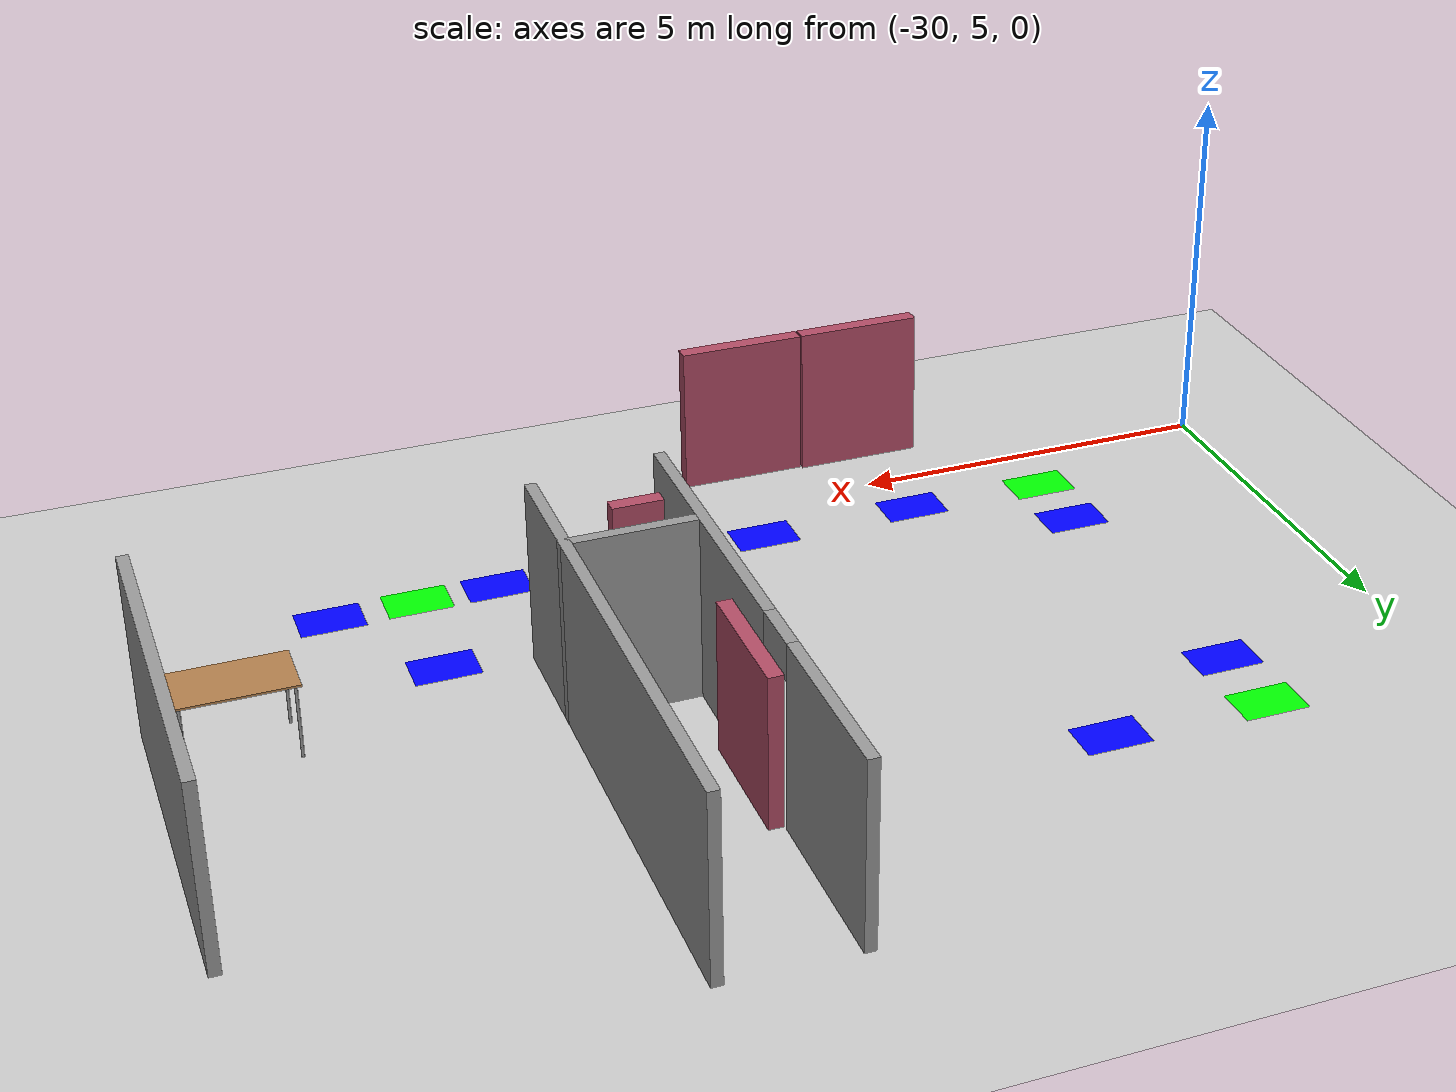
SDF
<sdf version="1.6">
 <world name="default">
  <model name="ground_plane">
   <pose>0 0 0.001 0 -0 0</pose>
   <static>1</static>
   <link name="link">
    <collision name="collision">
     <geometry><plane><normal>0 0 1</normal><size>100 100</size></plane></geometry>
     <surface><friction><ode><mu>100</mu><mu2>50</mu2></ode></friction></surface>
    </collision>
    <visual name="visual">
     <cast_shadows>0</cast_shadows>
     <geometry><plane><normal>0 0 1</normal><size>100 100</size></plane></geometry>
     <material>
      <script><uri>file://media/materials/scripts/gazebo.material</uri><name>Gazebo/Grey</name></script>
     </material>
    </visual>
   </link>
  </model>
  <model name="fin_se1f1.sdf">
   <pose>1.8125 -2.2901 0 0 -0 0</pose>
   <link name="Wall_118">
    <collision name="Wall_118_Collision">
     <geometry><box><size>1.75 0.15 2.5</size></box></geometry>
     <pose>0 0 1.25 0 -0 0</pose>
    </collision>
    <visual name="Wall_118_Visual">
     <pose>0 0 1.25 0 -0 0</pose>
     <geometry><box><size>1.75 0.15 2.5</size></box></geometry>
     <material>
      <script><uri>file://media/materials/scripts/gazebo.material</uri><name>Gazebo/Grey</name></script>
      <ambient>1 1 1 1</ambient>
     </material>
     <meta><layer>0</layer></meta>
    </visual>
    <pose>-22.0422 11.426 0 0 -0 3.14159</pose>
   </link>
   <link name="Wall_94">
    <collision name="Wall_94_Collision">
     <geometry><box><size>6.75 0.15 2.5</size></box></geometry>
     <pose>0 0 1.25 0 -0 0</pose>
    </collision>
    <visual name="Wall_94_Visual">
     <pose>0 0 1.25 0 -0 0</pose>
     <geometry><box><size>6.75 0.15 2.5</size></box></geometry>
     <material>
      <script><uri>file://media/materials/scripts/gazebo.material</uri><name>Gazebo/Grey</name></script>
      <ambient>1 1 1 1</ambient>
     </material>
     <meta><layer>0</layer></meta>
    </visual>
    <pose>-21.2422 13.3157 0 0 0 -1.5708</pose>
   </link>
   <link name="Wall_96">
    <pose>-22.9543 13.2442 0 0 0 -1.5708</pose>
    <visual name="Wall_96_Visual_0">
     <pose>-2.32948 0 1.25 0 -0 0</pose>
     <geometry><box><size>2.34105 0.15 2.5</size></box></geometry>
     <material>
      <script><uri>file://media/materials/scripts/gazebo.material</uri><name>Gazebo/Grey</name></script>
      <ambient>1 1 1 1</ambient>
     </material>
     <meta><layer>0</layer></meta>
    </visual>
    <collision name="Wall_96_Collision_0">
     <geometry><box><size>2.34105 0.15 2.5</size></box></geometry>
     <pose>-2.32948 0 1.25 0 -0 0</pose>
    </collision>
    <visual name="Wall_96_Visual_1">
     <pose>1.53001 0 1.25 0 -0 0</pose>
     <geometry><box><size>3.93998 0.15 2.5</size></box></geometry>
     <material>
      <script><uri>file://media/materials/scripts/gazebo.material</uri><name>Gazebo/Grey</name></script>
      <ambient>1 1 1 1</ambient>
     </material>
     <meta><layer>0</layer></meta>
    </visual>
    <collision name="Wall_96_Collision_1">
     <geometry><box><size>3.93998 0.15 2.5</size></box></geometry>
     <pose>1.53001 0 1.25 0 -0 0</pose>
    </collision>
    <visual name="Wall_96_Visual_2">
     <pose>-0.799464 0 2.25 0 -0 0</pose>
     <geometry><box><size>0.718978 0.15 0.5</size></box></geometry>
     <material>
      <script><uri>file://media/materials/scripts/gazebo.material</uri><name>Gazebo/Grey</name></script>
      <ambient>1 1 1 1</ambient>
     </material>
     <meta><layer>0</layer></meta>
    </visual>
    <collision name="Wall_96_Collision_2">
     <geometry><box><size>0.718978 0.15 0.5</size></box></geometry>
     <pose>-0.799464 0 2.25 0 -0 0</pose>
    </collision>
   </link>
   <link name="Wall_98">
    <collision name="Wall_98_Collision">
     <geometry><box><size>4.75 0.15 2.5</size></box></geometry>
     <pose>0 0 1.25 0 -0 0</pose>
    </collision>
    <visual name="Wall_98_Visual">
     <pose>0 0 1.25 0 -0 0</pose>
     <geometry><box><size>4.75 0.15 2.5</size></box></geometry>
     <material>
      <script><uri>file://media/materials/scripts/gazebo.material</uri><name>Gazebo/Grey</name></script>
      <ambient>1 1 1 1</ambient>
     </material>
     <meta><layer>0</layer></meta>
    </visual>
    <pose>-16.3735 12.2826 0 0 0 -1.5708</pose>
   </link>
   <static>1</static>
  </model>
  <model name="table_2">
   <static>1</static>
   <link name="link">
    <collision name="surface">
     <pose>0 0 1 0 -0 0</pose>
     <geometry><box><size>1.5 0.8 0.03</size></box></geometry>
     <surface><friction><ode><mu>0.6</mu><mu2>0.6</mu2></ode></friction></surface>
    </collision>
    <visual name="visual1">
     <pose>0 0 1 0 -0 0</pose>
     <geometry><box><size>1.5 0.8 0.03</size></box></geometry>
     <material>
      <script><uri>file://media/materials/scripts/gazebo.material</uri><name>Gazebo/Wood</name></script>
     </material>
    </visual>
    <collision name="front_left_leg">
     <pose>0.68 0.38 0.5 0 -0 0</pose>
     <geometry><cylinder><radius>0.02</radius><length>1</length></cylinder></geometry>
    </collision>
    <visual name="front_left_leg">
     <pose>0.68 0.38 0.5 0 -0 0</pose>
     <geometry><cylinder><radius>0.02</radius><length>1</length></cylinder></geometry>
     <material>
      <script><uri>file://media/materials/scripts/gazebo.material</uri><name>Gazebo/Grey</name></script>
     </material>
    </visual>
    <collision name="front_right_leg">
     <pose>0.68 -0.38 0.5 0 -0 0</pose>
     <geometry><cylinder><radius>0.02</radius><length>1</length></cylinder></geometry>
    </collision>
    <visual name="front_right_leg">
     <pose>0.68 -0.38 0.5 0 -0 0</pose>
     <geometry><cylinder><radius>0.02</radius><length>1</length></cylinder></geometry>
     <material>
      <script><uri>file://media/materials/scripts/gazebo.material</uri><name>Gazebo/Grey</name></script>
     </material>
    </visual>
    <collision name="back_right_leg">
     <pose>-0.68 -0.38 0.5 0 -0 0</pose>
     <geometry><cylinder><radius>0.02</radius><length>1</length></cylinder></geometry>
    </collision>
    <visual name="back_right_leg">
     <pose>-0.68 -0.38 0.5 0 -0 0</pose>
     <geometry><cylinder><radius>0.02</radius><length>1</length></cylinder></geometry>
     <material>
      <script><uri>file://media/materials/scripts/gazebo.material</uri><name>Gazebo/Grey</name></script>
     </material>
    </visual>
    <collision name="back_left_leg">
     <pose>-0.68 0.38 0.5 0 -0 0</pose>
     <geometry><cylinder><radius>0.02</radius><length>1</length></cylinder></geometry>
    </collision>
    <visual name="back_left_leg">
     <pose>-0.68 0.38 0.5 0 -0 0</pose>
     <geometry><cylinder><radius>0.02</radius><length>1</length></cylinder></geometry>
     <material>
      <script><uri>file://media/materials/scripts/gazebo.material</uri><name>Gazebo/Grey</name></script>
     </material>
    </visual>
   </link>
   <pose>-15.5399 8.3596 0.001 0 -0 0</pose>
  </model>
  <model name="doorOutside_clone_8_clone_7_clone_2">
   <link name="link">
    <pose>0.155539 -0.366282 0.216958 0 -0 0</pose>
    <inertial>
     <mass>2.13199</mass>
     <inertia>
      <ixx>0.452656</ixx>
      <ixy>0</ixy>
      <ixz>0</ixz>
      <iyy>0.796738</iyy>
      <iyz>0</iyz>
      <izz>0.699414</izz>
     </inertia>
     <pose>0 0 0.001 0 -0 0</pose>
    </inertial>
    <visual name="visual">
     <geometry><box><size>1.71368 0.198843 2.05986</size></box></geometry>
     <material>
      <script><name>Gazebo/Grey</name><uri>file://media/materials/scripts/gazebo.material</uri></script>
      <ambient>0.7 0.3 0.4 1</ambient>
      <diffuse>0.7 0.7 0.7 1</diffuse>
      <specular>0.01 0.01 0.01 1</specular>
      <emissive>0 0 0 1</emissive>
      <shader type="vertex"><normal_map>__default__</normal_map></shader>
      <lighting>0</lighting>
     </material>
     <pose>0 0 0.001 0 -0 0</pose>
    </visual>
    <collision name="collision">
     <pose>0 0 0.001 0 -0 0</pose>
     <geometry><box><size>1.71368 0.198843 2.05986</size></box></geometry>
     <surface>
      <friction>
       <ode><mu>1</mu><mu2>1</mu2><fdir1>0 0 0</fdir1><slip1>0</slip1><slip2>0</slip2></ode>
       <torsional>
        <coefficient>1</coefficient>
        <patch_radius>0</patch_radius>
        <surface_radius>0</surface_radius>
        <use_patch_radius>1</use_patch_radius>
        <ode><slip>0</slip></ode>
       </torsional>
      </friction>
      <bounce><restitution_coefficient>0</restitution_coefficient><threshold>1e+06</threshold></bounce>
      <contact>
       <collide_without_contact>0</collide_without_contact>
       <collide_without_contact_bitmask>1</collide_without_contact_bitmask>
       <collide_bitmask>1</collide_bitmask>
       <ode>
        <soft_cfm>0</soft_cfm>
        <soft_erp>0.2</soft_erp>
        <kp>1e+13</kp>
        <kd>1</kd>
        <max_vel>0.01</max_vel>
        <min_depth>0</min_depth>
       </ode>
       <bullet>
        <split_impulse>1</split_impulse>
        <split_impulse_penetration_threshold>-0.01</split_impulse_penetration_threshold>
        <soft_cfm>0</soft_cfm>
        <soft_erp>0.2</soft_erp>
        <kp>1e+13</kp>
        <kd>1</kd>
       </bullet>
      </contact>
     </surface>
    </collision>
   </link>
   <static>1</static>
   <pose>-23.5819 4.42818 0.814859 0.004083 -5e-06 -0.004333</pose>
  </model>
  <model name="doorOutside_clone_8_clone_7_clone_3">
   <link name="link">
    <pose>0.155539 -0.366282 0.216958 0 -0 0</pose>
    <inertial>
     <mass>2.13199</mass>
     <inertia>
      <ixx>0.452656</ixx>
      <ixy>0</ixy>
      <ixz>0</ixz>
      <iyy>0.796738</iyy>
      <iyz>0</iyz>
      <izz>0.699414</izz>
     </inertia>
     <pose>0 0 0.001 0 -0 0</pose>
    </inertial>
    <visual name="visual">
     <geometry><box><size>1.71368 0.198843 2.05986</size></box></geometry>
     <material>
      <script><name>Gazebo/Grey</name><uri>file://media/materials/scripts/gazebo.material</uri></script>
      <ambient>0.7 0.3 0.4 1</ambient>
      <diffuse>0.7 0.7 0.7 1</diffuse>
      <specular>0.01 0.01 0.01 1</specular>
      <emissive>0 0 0 1</emissive>
      <shader type="vertex"><normal_map>__default__</normal_map></shader>
      <lighting>0</lighting>
     </material>
     <pose>0 0 0.001 0 -0 0</pose>
    </visual>
    <collision name="collision">
     <pose>0 0 0.001 0 -0 0</pose>
     <geometry><box><size>1.71368 0.198843 2.05986</size></box></geometry>
     <surface>
      <friction>
       <ode><mu>1</mu><mu2>1</mu2><fdir1>0 0 0</fdir1><slip1>0</slip1><slip2>0</slip2></ode>
       <torsional>
        <coefficient>1</coefficient>
        <patch_radius>0</patch_radius>
        <surface_radius>0</surface_radius>
        <use_patch_radius>1</use_patch_radius>
        <ode><slip>0</slip></ode>
       </torsional>
      </friction>
      <bounce><restitution_coefficient>0</restitution_coefficient><threshold>1e+06</threshold></bounce>
      <contact>
       <collide_without_contact>0</collide_without_contact>
       <collide_without_contact_bitmask>1</collide_without_contact_bitmask>
       <collide_bitmask>1</collide_bitmask>
       <ode>
        <soft_cfm>0</soft_cfm>
        <soft_erp>0.2</soft_erp>
        <kp>1e+13</kp>
        <kd>1</kd>
        <max_vel>0.01</max_vel>
        <min_depth>0</min_depth>
       </ode>
       <bullet>
        <split_impulse>1</split_impulse>
        <split_impulse_penetration_threshold>-0.01</split_impulse_penetration_threshold>
        <soft_cfm>0</soft_cfm>
        <soft_erp>0.2</soft_erp>
        <kp>1e+13</kp>
        <kd>1</kd>
       </bullet>
      </contact>
     </surface>
    </collision>
   </link>
   <static>1</static>
   <pose>-25.3182 4.45907 0.825573 0.027736 -0 0</pose>
  </model>
  <model name="intersection_0">
   <link name="link">
    <pose>0 0 0.001 0 -0 0</pose>
    <inertial>
     <mass>0.0352517</mass>
     <inertia>
      <ixx>0.000997067</ixx>
      <ixy>0</ixy>
      <ixz>0</ixz>
      <iyy>0.00220147</iyy>
      <iyz>0</iyz>
      <izz>0.0031692</izz>
     </inertia>
     <pose>0 0 0.001 0 -0 0</pose>
    </inertial>
    <visual name="visual">
     <geometry><box><size>0.862743 0.578289 1e-06</size></box></geometry>
     <material>
      <script><name>Gazebo/Grey</name><uri>file://media/materials/scripts/gazebo.material</uri></script>
      <ambient>0 0 1 1</ambient>
      <diffuse>0 0 1 1</diffuse>
      <specular>0 0 1 1</specular>
      <emissive>0 0 1 1</emissive>
      <shader type="vertex"><normal_map>__default__</normal_map></shader>
     </material>
     <pose>0 0 0.001 0 -0 0</pose>
    </visual>
    <collision name="collision">
     <pose>0 0 0.001 0 -0 0</pose>
     <geometry><box><size>0.862743 0.578289 0.000477</size></box></geometry>
     <surface>
      <friction>
       <ode><mu>1</mu><mu2>1</mu2><fdir1>0 0 0</fdir1><slip1>0</slip1><slip2>0</slip2></ode>
       <torsional>
        <coefficient>1</coefficient>
        <patch_radius>0</patch_radius>
        <surface_radius>0</surface_radius>
        <use_patch_radius>1</use_patch_radius>
        <ode><slip>0</slip></ode>
       </torsional>
      </friction>
      <bounce><restitution_coefficient>0</restitution_coefficient><threshold>1e+06</threshold></bounce>
      <contact>
       <collide_without_contact>0</collide_without_contact>
       <collide_without_contact_bitmask>1</collide_without_contact_bitmask>
       <collide_bitmask>1</collide_bitmask>
       <ode>
        <soft_cfm>0</soft_cfm>
        <soft_erp>0.2</soft_erp>
        <kp>1e+13</kp>
        <kd>1</kd>
        <max_vel>0.01</max_vel>
        <min_depth>0</min_depth>
       </ode>
       <bullet>
        <split_impulse>1</split_impulse>
        <split_impulse_penetration_threshold>-0.01</split_impulse_penetration_threshold>
        <soft_cfm>0</soft_cfm>
        <soft_erp>0.2</soft_erp>
        <kp>1e+13</kp>
        <kd>1</kd>
       </bullet>
      </contact>
     </surface>
    </collision>
   </link>
   <static>1</static>
   <pose>-25.3659 11.7621 0 0 -0 0</pose>
  </model>
  <model name="intersection_1">
   <link name="link">
    <pose>0 0 0.001 0 -0 0</pose>
    <inertial>
     <mass>0.0352517</mass>
     <inertia>
      <ixx>0.000997067</ixx>
      <ixy>0</ixy>
      <ixz>0</ixz>
      <iyy>0.00220147</iyy>
      <iyz>0</iyz>
      <izz>0.0031692</izz>
     </inertia>
     <pose>0 0 0.001 0 -0 0</pose>
    </inertial>
    <visual name="visual">
     <geometry><box><size>0.862743 0.578289 1e-06</size></box></geometry>
     <material>
      <script><name>Gazebo/Grey</name><uri>file://media/materials/scripts/gazebo.material</uri></script>
      <ambient>0 0 1 1</ambient>
      <diffuse>0 0 1 1</diffuse>
      <specular>0 0 1 1</specular>
      <emissive>0 0 1 1</emissive>
      <shader type="vertex"><normal_map>__default__</normal_map></shader>
     </material>
     <pose>0 0 0.001 0 -0 0</pose>
    </visual>
    <collision name="collision">
     <pose>0 0 0.001 0 -0 0</pose>
     <geometry><box><size>0.862743 0.578289 0.000477</size></box></geometry>
     <surface>
      <friction>
       <ode><mu>1</mu><mu2>1</mu2><fdir1>0 0 0</fdir1><slip1>0</slip1><slip2>0</slip2></ode>
       <torsional>
        <coefficient>1</coefficient>
        <patch_radius>0</patch_radius>
        <surface_radius>0</surface_radius>
        <use_patch_radius>1</use_patch_radius>
        <ode><slip>0</slip></ode>
       </torsional>
      </friction>
      <bounce><restitution_coefficient>0</restitution_coefficient><threshold>1e+06</threshold></bounce>
      <contact>
       <collide_without_contact>0</collide_without_contact>
       <collide_without_contact_bitmask>1</collide_without_contact_bitmask>
       <collide_bitmask>1</collide_bitmask>
       <ode>
        <soft_cfm>0</soft_cfm>
        <soft_erp>0.2</soft_erp>
        <kp>1e+13</kp>
        <kd>1</kd>
        <max_vel>0.01</max_vel>
        <min_depth>0</min_depth>
       </ode>
       <bullet>
        <split_impulse>1</split_impulse>
        <split_impulse_penetration_threshold>-0.01</split_impulse_penetration_threshold>
        <soft_cfm>0</soft_cfm>
        <soft_erp>0.2</soft_erp>
        <kp>1e+13</kp>
        <kd>1</kd>
       </bullet>
      </contact>
     </surface>
    </collision>
   </link>
   <static>1</static>
   <pose>-21.9217 7.70918 0 0 -0 0</pose>
  </model>
  <model name="intersection_2">
   <link name="link">
    <pose>0 0 0.001 0 -0 0</pose>
    <inertial>
     <mass>0.0352517</mass>
     <inertia>
      <ixx>0.000997067</ixx>
      <ixy>0</ixy>
      <ixz>0</ixz>
      <iyy>0.00220147</iyy>
      <iyz>0</iyz>
      <izz>0.0031692</izz>
     </inertia>
     <pose>0 0 0.001 0 -0 0</pose>
    </inertial>
    <visual name="visual">
     <geometry><box><size>0.862743 0.578289 1e-06</size></box></geometry>
     <material>
      <script><name>Gazebo/Grey</name><uri>file://media/materials/scripts/gazebo.material</uri></script>
      <ambient>0 0 1 1</ambient>
      <diffuse>0 0 1 1</diffuse>
      <specular>0 0 1 1</specular>
      <emissive>0 0 1 1</emissive>
      <shader type="vertex"><normal_map>__default__</normal_map></shader>
     </material>
     <pose>0 0 0.001 0 -0 0</pose>
    </visual>
    <collision name="collision">
     <pose>0 0 0.001 0 -0 0</pose>
     <geometry><box><size>0.862743 0.578289 0.000477</size></box></geometry>
     <surface>
      <friction>
       <ode><mu>1</mu><mu2>1</mu2><fdir1>0 0 0</fdir1><slip1>0</slip1><slip2>0</slip2></ode>
       <torsional>
        <coefficient>1</coefficient>
        <patch_radius>0</patch_radius>
        <surface_radius>0</surface_radius>
        <use_patch_radius>1</use_patch_radius>
        <ode><slip>0</slip></ode>
       </torsional>
      </friction>
      <bounce><restitution_coefficient>0</restitution_coefficient><threshold>1e+06</threshold></bounce>
      <contact>
       <collide_without_contact>0</collide_without_contact>
       <collide_without_contact_bitmask>1</collide_without_contact_bitmask>
       <collide_bitmask>1</collide_bitmask>
       <ode>
        <soft_cfm>0</soft_cfm>
        <soft_erp>0.2</soft_erp>
        <kp>1e+13</kp>
        <kd>1</kd>
        <max_vel>0.01</max_vel>
        <min_depth>0</min_depth>
       </ode>
       <bullet>
        <split_impulse>1</split_impulse>
        <split_impulse_penetration_threshold>-0.01</split_impulse_penetration_threshold>
        <soft_cfm>0</soft_cfm>
        <soft_erp>0.2</soft_erp>
        <kp>1e+13</kp>
        <kd>1</kd>
       </bullet>
      </contact>
     </surface>
    </collision>
   </link>
   <static>1</static>
   <pose>-25.3153 5.80735 0 0 -0 0</pose>
  </model>
  <model name="intersection_10">
   <link name="link">
    <pose>0 0 0.001 0 -0 0</pose>
    <inertial>
     <mass>0.0352517</mass>
     <inertia>
      <ixx>0.000997067</ixx>
      <ixy>0</ixy>
      <ixz>0</ixz>
      <iyy>0.00220147</iyy>
      <iyz>0</iyz>
      <izz>0.0031692</izz>
     </inertia>
     <pose>0 0 0.001 0 -0 0</pose>
    </inertial>
    <visual name="visual">
     <geometry><box><size>0.862743 0.578289 1e-06</size></box></geometry>
     <material>
      <script><name>Gazebo/Grey</name><uri>file://media/materials/scripts/gazebo.material</uri></script>
      <ambient>0 0 1 1</ambient>
      <diffuse>0 0 1 1</diffuse>
      <specular>0 0 1 1</specular>
      <emissive>0 0 1 1</emissive>
      <shader type="vertex"><normal_map>__default__</normal_map></shader>
     </material>
     <pose>0 0 0.001 0 -0 0</pose>
    </visual>
    <collision name="collision">
     <pose>0 0 0.001 0 -0 0</pose>
     <geometry><box><size>0.862743 0.578289 0.000477</size></box></geometry>
     <surface>
      <friction>
       <ode><mu>1</mu><mu2>1</mu2><fdir1>0 0 0</fdir1><slip1>0</slip1><slip2>0</slip2></ode>
       <torsional>
        <coefficient>1</coefficient>
        <patch_radius>0</patch_radius>
        <surface_radius>0</surface_radius>
        <use_patch_radius>1</use_patch_radius>
        <ode><slip>0</slip></ode>
       </torsional>
      </friction>
      <bounce><restitution_coefficient>0</restitution_coefficient><threshold>1e+06</threshold></bounce>
      <contact>
       <collide_without_contact>0</collide_without_contact>
       <collide_without_contact_bitmask>1</collide_without_contact_bitmask>
       <collide_bitmask>1</collide_bitmask>
       <ode>
        <soft_cfm>0</soft_cfm>
        <soft_erp>0.2</soft_erp>
        <kp>1e+13</kp>
        <kd>1</kd>
        <max_vel>0.01</max_vel>
        <min_depth>0</min_depth>
       </ode>
       <bullet>
        <split_impulse>1</split_impulse>
        <split_impulse_penetration_threshold>-0.01</split_impulse_penetration_threshold>
        <soft_cfm>0</soft_cfm>
        <soft_erp>0.2</soft_erp>
        <kp>1e+13</kp>
        <kd>1</kd>
       </bullet>
      </contact>
     </surface>
    </collision>
   </link>
   <static>1</static>
   <pose>-18.2493 7.4564 0 0 -0 0</pose>
  </model>
  <model name="doorOutside_2_clone_0">
   <link name="link">
    <pose>0.155539 -0.366282 0.216958 0 -0 0</pose>
    <inertial>
     <mass>2.13199</mass>
     <inertia>
      <ixx>0.452656</ixx>
      <ixy>0</ixy>
      <ixz>0</ixz>
      <iyy>0.796738</iyy>
      <iyz>0</iyz>
      <izz>0.699414</izz>
     </inertia>
     <pose>0 0 0.001 0 -0 0</pose>
    </inertial>
    <visual name="visual">
     <geometry><box><size>1.71368 0.198843 2.05986</size></box></geometry>
     <material>
      <script><name>Gazebo/Grey</name><uri>file://media/materials/scripts/gazebo.material</uri></script>
      <ambient>0.7 0.3 0.4 1</ambient>
      <diffuse>0.7 0.7 0.7 1</diffuse>
      <specular>0.01 0.01 0.01 1</specular>
      <emissive>0 0 0 1</emissive>
      <shader type="vertex"><normal_map>__default__</normal_map></shader>
      <lighting>0</lighting>
     </material>
     <pose>0 0 0.001 0 -0 0</pose>
    </visual>
    <collision name="collision">
     <pose>0 0 0.001 0 -0 0</pose>
     <geometry><box><size>1.71368 0.198843 2.05986</size></box></geometry>
     <surface>
      <friction>
       <ode><mu>1</mu><mu2>1</mu2><fdir1>0 0 0</fdir1><slip1>0</slip1><slip2>0</slip2></ode>
       <torsional>
        <coefficient>1</coefficient>
        <patch_radius>0</patch_radius>
        <surface_radius>0</surface_radius>
        <use_patch_radius>1</use_patch_radius>
        <ode><slip>0</slip></ode>
       </torsional>
      </friction>
      <bounce><restitution_coefficient>0</restitution_coefficient><threshold>1e+06</threshold></bounce>
      <contact>
       <collide_without_contact>0</collide_without_contact>
       <collide_without_contact_bitmask>1</collide_without_contact_bitmask>
       <collide_bitmask>1</collide_bitmask>
       <ode>
        <soft_cfm>0</soft_cfm>
        <soft_erp>0.2</soft_erp>
        <kp>1e+13</kp>
        <kd>1</kd>
        <max_vel>0.01</max_vel>
        <min_depth>0</min_depth>
       </ode>
       <bullet>
        <split_impulse>1</split_impulse>
        <split_impulse_penetration_threshold>-0.01</split_impulse_penetration_threshold>
        <soft_cfm>0</soft_cfm>
        <soft_erp>0.2</soft_erp>
        <kp>1e+13</kp>
        <kd>1</kd>
       </bullet>
      </contact>
     </surface>
    </collision>
   </link>
   <static>0</static>
   <pose>-21.3336 11.0502 0.811972 0 -0 1.57082</pose>
  </model>
  <model name="doorInside">
   <link name="link">
    <pose>0.712274 -0.220649 0.216958 0 -0 0</pose>
    <inertial>
     <mass>0.840612</mass>
     <inertia>
      <ixx>0.178476</ixx>
      <ixy>0</ixy>
      <ixz>0</ixz>
      <iyy>0.140406</iyy>
      <iyz>0</iyz>
      <izz>0.102032</izz>
     </inertia>
     <pose>0 0 0.001 0 -0 0</pose>
    </inertial>
    <visual name="visual">
     <geometry><box><size>0.675678 0.198843 2.05986</size></box></geometry>
     <material>
      <script><name>Gazebo/Grey</name><uri>file://media/materials/scripts/gazebo.material</uri></script>
      <ambient>0.7 0.3 0.4 1</ambient>
      <diffuse>0.7 0.7 0.7 1</diffuse>
      <specular>0.01 0.01 0.01 1</specular>
      <emissive>1 0 0 1</emissive>
      <shader type="vertex"><normal_map>__default__</normal_map></shader>
      <lighting>0</lighting>
     </material>
     <pose>0 0 0.001 0 -0 0</pose>
    </visual>
    <collision name="collision">
     <pose>0 0 0.001 0 -0 0</pose>
     <geometry><box><size>0.675678 0.198843 2.05986</size></box></geometry>
     <surface>
      <friction>
       <ode><mu>1</mu><mu2>1</mu2><fdir1>0 0 0</fdir1><slip1>0</slip1><slip2>0</slip2></ode>
       <torsional>
        <coefficient>1</coefficient>
        <patch_radius>0</patch_radius>
        <surface_radius>0</surface_radius>
        <use_patch_radius>1</use_patch_radius>
        <ode><slip>0</slip></ode>
       </torsional>
      </friction>
      <bounce><restitution_coefficient>0</restitution_coefficient><threshold>1e+06</threshold></bounce>
      <contact>
       <collide_without_contact>0</collide_without_contact>
       <collide_without_contact_bitmask>1</collide_without_contact_bitmask>
       <collide_bitmask>1</collide_bitmask>
       <ode>
        <soft_cfm>0</soft_cfm>
        <soft_erp>0.2</soft_erp>
        <kp>1e+13</kp>
        <kd>1</kd>
        <max_vel>0.01</max_vel>
        <min_depth>0</min_depth>
       </ode>
       <bullet>
        <split_impulse>1</split_impulse>
        <split_impulse_penetration_threshold>-0.01</split_impulse_penetration_threshold>
        <soft_cfm>0</soft_cfm>
        <soft_erp>0.2</soft_erp>
        <kp>1e+13</kp>
        <kd>1</kd>
       </bullet>
      </contact>
     </surface>
    </collision>
   </link>
   <static>0</static>
   <pose>-21.4412 7.97959 0.811972 0 0 -1e-06</pose>
  </model>
  <model name="corridor_1">
   <link name="link">
    <pose>0 0 0.001 0 -0 0</pose>
    <inertial>
     <mass>0.0352517</mass>
     <inertia>
      <ixx>0.00099707</ixx>
      <ixy>0</ixy>
      <ixz>0</ixz>
      <iyy>0.00220147</iyy>
      <iyz>0</iyz>
      <izz>0.0031692</izz>
     </inertia>
     <pose>0 0 0.001 0 -0 0</pose>
    </inertial>
    <visual name="visual">
     <geometry><box><size>0.862743 0.578289 1e-06</size></box></geometry>
     <material>
      <script><name>Gazebo/Grey</name><uri>file://media/materials/scripts/gazebo.material</uri></script>
      <ambient>0 1 0 1</ambient>
      <diffuse>0 1 0 1</diffuse>
      <specular>0 1 0 1</specular>
      <emissive>0 1 0 1</emissive>
      <shader type="vertex"><normal_map>__default__</normal_map></shader>
     </material>
     <pose>0 0 0.001 0 -0 0</pose>
    </visual>
    <collision name="collision">
     <pose>0 0 0.001 0 -0 0</pose>
     <geometry><box><size>0.862743 0.578289 0.000477</size></box></geometry>
     <surface>
      <friction>
       <ode><mu>1</mu><mu2>1</mu2><fdir1>0 0 0</fdir1><slip1>0</slip1><slip2>0</slip2></ode>
       <torsional>
        <coefficient>1</coefficient>
        <patch_radius>0</patch_radius>
        <surface_radius>0</surface_radius>
        <use_patch_radius>1</use_patch_radius>
        <ode><slip>0</slip></ode>
       </torsional>
      </friction>
      <bounce><restitution_coefficient>0</restitution_coefficient><threshold>1e+06</threshold></bounce>
      <contact>
       <collide_without_contact>0</collide_without_contact>
       <collide_without_contact_bitmask>1</collide_without_contact_bitmask>
       <collide_bitmask>1</collide_bitmask>
       <ode>
        <soft_cfm>0</soft_cfm>
        <soft_erp>0.2</soft_erp>
        <kp>1e+13</kp>
        <kd>1</kd>
        <max_vel>0.01</max_vel>
        <min_depth>0</min_depth>
       </ode>
       <bullet>
        <split_impulse>1</split_impulse>
        <split_impulse_penetration_threshold>-0.01</split_impulse_penetration_threshold>
        <soft_cfm>0</soft_cfm>
        <soft_erp>0.2</soft_erp>
        <kp>1e+13</kp>
        <kd>1</kd>
       </bullet>
      </contact>
     </surface>
    </collision>
   </link>
   <static>1</static>
   <pose>-27.4848 11.7903 0 0 -0 0</pose>
  </model>
  <model name="corridor_2">
   <link name="link">
    <pose>0 0 0.001 0 -0 0</pose>
    <inertial>
     <mass>0.0352517</mass>
     <inertia>
      <ixx>0.00099707</ixx>
      <ixy>0</ixy>
      <ixz>0</ixz>
      <iyy>0.00220147</iyy>
      <iyz>0</iyz>
      <izz>0.0031692</izz>
     </inertia>
     <pose>0 0 0.001 0 -0 0</pose>
    </inertial>
    <visual name="visual">
     <geometry><box><size>0.862743 0.578289 1e-06</size></box></geometry>
     <material>
      <script><name>Gazebo/Grey</name><uri>file://media/materials/scripts/gazebo.material</uri></script>
      <ambient>0 1 0 1</ambient>
      <diffuse>0 1 0 1</diffuse>
      <specular>0 1 0 1</specular>
      <emissive>0 1 0 1</emissive>
      <shader type="vertex"><normal_map>__default__</normal_map></shader>
     </material>
     <pose>0 0 0.001 0 -0 0</pose>
    </visual>
    <collision name="collision">
     <pose>0 0 0.001 0 -0 0</pose>
     <geometry><box><size>0.862743 0.578289 0.000477</size></box></geometry>
     <surface>
      <friction>
       <ode><mu>1</mu><mu2>1</mu2><fdir1>0 0 0</fdir1><slip1>0</slip1><slip2>0</slip2></ode>
       <torsional>
        <coefficient>1</coefficient>
        <patch_radius>0</patch_radius>
        <surface_radius>0</surface_radius>
        <use_patch_radius>1</use_patch_radius>
        <ode><slip>0</slip></ode>
       </torsional>
      </friction>
      <bounce><restitution_coefficient>0</restitution_coefficient><threshold>1e+06</threshold></bounce>
      <contact>
       <collide_without_contact>0</collide_without_contact>
       <collide_without_contact_bitmask>1</collide_without_contact_bitmask>
       <collide_bitmask>1</collide_bitmask>
       <ode>
        <soft_cfm>0</soft_cfm>
        <soft_erp>0.2</soft_erp>
        <kp>1e+13</kp>
        <kd>1</kd>
        <max_vel>0.01</max_vel>
        <min_depth>0</min_depth>
       </ode>
       <bullet>
        <split_impulse>1</split_impulse>
        <split_impulse_penetration_threshold>-0.01</split_impulse_penetration_threshold>
        <soft_cfm>0</soft_cfm>
        <soft_erp>0.2</soft_erp>
        <kp>1e+13</kp>
        <kd>1</kd>
       </bullet>
      </contact>
     </surface>
    </collision>
   </link>
   <static>1</static>
   <pose>-27.2383 5.85562 0 0 -0 0</pose>
  </model>
  <model name="corridor_20">
   <link name="link">
    <pose>0 0 0.001 0 -0 0</pose>
    <inertial>
     <mass>0.0352517</mass>
     <inertia>
      <ixx>0.00099707</ixx>
      <ixy>0</ixy>
      <ixz>0</ixz>
      <iyy>0.00220147</iyy>
      <iyz>0</iyz>
      <izz>0.0031692</izz>
     </inertia>
     <pose>0 0 0.001 0 -0 0</pose>
    </inertial>
    <visual name="visual">
     <geometry><box><size>0.862743 0.578289 1e-06</size></box></geometry>
     <material>
      <script><name>Gazebo/Grey</name><uri>file://media/materials/scripts/gazebo.material</uri></script>
      <ambient>0 1 0 1</ambient>
      <diffuse>0 1 0 1</diffuse>
      <specular>0 1 0 1</specular>
      <emissive>0 1 0 1</emissive>
      <shader type="vertex"><normal_map>__default__</normal_map></shader>
     </material>
     <pose>0 0 0.001 0 -0 0</pose>
    </visual>
    <collision name="collision">
     <pose>0 0 0.001 0 -0 0</pose>
     <geometry><box><size>0.862743 0.578289 0.000477</size></box></geometry>
     <surface>
      <friction>
       <ode><mu>1</mu><mu2>1</mu2><fdir1>0 0 0</fdir1><slip1>0</slip1><slip2>0</slip2></ode>
       <torsional>
        <coefficient>1</coefficient>
        <patch_radius>0</patch_radius>
        <surface_radius>0</surface_radius>
        <use_patch_radius>1</use_patch_radius>
        <ode><slip>0</slip></ode>
       </torsional>
      </friction>
      <bounce><restitution_coefficient>0</restitution_coefficient><threshold>1e+06</threshold></bounce>
      <contact>
       <collide_without_contact>0</collide_without_contact>
       <collide_without_contact_bitmask>1</collide_without_contact_bitmask>
       <collide_bitmask>1</collide_bitmask>
       <ode>
        <soft_cfm>0</soft_cfm>
        <soft_erp>0.2</soft_erp>
        <kp>1e+13</kp>
        <kd>1</kd>
        <max_vel>0.01</max_vel>
        <min_depth>0</min_depth>
       </ode>
       <bullet>
        <split_impulse>1</split_impulse>
        <split_impulse_penetration_threshold>-0.01</split_impulse_penetration_threshold>
        <soft_cfm>0</soft_cfm>
        <soft_erp>0.2</soft_erp>
        <kp>1e+13</kp>
        <kd>1</kd>
       </bullet>
      </contact>
     </surface>
    </collision>
   </link>
   <static>1</static>
   <pose>-18.3036 5.80577 0 0 -0 0</pose>
  </model>
  <model name="corridor_21">
   <link name="link">
    <pose>0 0 0.001 0 -0 0</pose>
    <inertial>
     <mass>0.0352517</mass>
     <inertia>
      <ixx>0.00099707</ixx>
      <ixy>0</ixy>
      <ixz>0</ixz>
      <iyy>0.00220147</iyy>
      <iyz>0</iyz>
      <izz>0.0031692</izz>
     </inertia>
     <pose>0 0 0.001 0 -0 0</pose>
    </inertial>
    <visual name="visual">
     <geometry><box><size>0.862743 0.578289 1e-06</size></box></geometry>
     <material>
      <script><name>Gazebo/Grey</name><uri>file://media/materials/scripts/gazebo.material</uri></script>
      <ambient>0 1 0 1</ambient>
      <diffuse>0 1 0 1</diffuse>
      <specular>0 1 0 1</specular>
      <emissive>0 1 0 1</emissive>
      <shader type="vertex"><normal_map>__default__</normal_map></shader>
     </material>
     <pose>0 0 0.001 0 -0 0</pose>
    </visual>
    <collision name="collision">
     <pose>0 0 0.001 0 -0 0</pose>
     <geometry><box><size>0.862743 0.578289 0.000477</size></box></geometry>
     <surface>
      <friction>
       <ode><mu>1</mu><mu2>1</mu2><fdir1>0 0 0</fdir1><slip1>0</slip1><slip2>0</slip2></ode>
       <torsional>
        <coefficient>1</coefficient>
        <patch_radius>0</patch_radius>
        <surface_radius>0</surface_radius>
        <use_patch_radius>1</use_patch_radius>
        <ode><slip>0</slip></ode>
       </torsional>
      </friction>
      <bounce><restitution_coefficient>0</restitution_coefficient><threshold>1e+06</threshold></bounce>
      <contact>
       <collide_without_contact>0</collide_without_contact>
       <collide_without_contact_bitmask>1</collide_without_contact_bitmask>
       <collide_bitmask>1</collide_bitmask>
       <ode>
        <soft_cfm>0</soft_cfm>
        <soft_erp>0.2</soft_erp>
        <kp>1e+13</kp>
        <kd>1</kd>
        <max_vel>0.01</max_vel>
        <min_depth>0</min_depth>
       </ode>
       <bullet>
        <split_impulse>1</split_impulse>
        <split_impulse_penetration_threshold>-0.01</split_impulse_penetration_threshold>
        <soft_cfm>0</soft_cfm>
        <soft_erp>0.2</soft_erp>
        <kp>1e+13</kp>
        <kd>1</kd>
       </bullet>
      </contact>
     </surface>
    </collision>
   </link>
   <static>1</static>
   <pose>-22.0064 5.8972 0 0 -0 0</pose>
  </model>
  <model name="intersection_30">
   <link name="link">
    <pose>0 0 0.001 0 -0 0</pose>
    <inertial>
     <mass>0.0352517</mass>
     <inertia>
      <ixx>0.000997067</ixx>
      <ixy>0</ixy>
      <ixz>0</ixz>
      <iyy>0.00220147</iyy>
      <iyz>0</iyz>
      <izz>0.0031692</izz>
     </inertia>
     <pose>0 0 0.001 0 -0 0</pose>
    </inertial>
    <visual name="visual">
     <geometry><box><size>0.862743 0.578289 1e-06</size></box></geometry>
     <material>
      <script><name>Gazebo/Grey</name><uri>file://media/materials/scripts/gazebo.material</uri></script>
      <ambient>0 0 1 1</ambient>
      <diffuse>0 0 1 1</diffuse>
      <specular>0 0 1 1</specular>
      <emissive>0 0 1 1</emissive>
      <shader type="vertex"><normal_map>__default__</normal_map></shader>
     </material>
     <pose>0 0 0.001 0 -0 0</pose>
    </visual>
    <collision name="collision">
     <pose>0 0 0.001 0 -0 0</pose>
     <geometry><box><size>0.862743 0.578289 0.000477</size></box></geometry>
     <surface>
      <friction>
       <ode><mu>1</mu><mu2>1</mu2><fdir1>0 0 0</fdir1><slip1>0</slip1><slip2>0</slip2></ode>
       <torsional>
        <coefficient>1</coefficient>
        <patch_radius>0</patch_radius>
        <surface_radius>0</surface_radius>
        <use_patch_radius>1</use_patch_radius>
        <ode><slip>0</slip></ode>
       </torsional>
      </friction>
      <bounce><restitution_coefficient>0</restitution_coefficient><threshold>1e+06</threshold></bounce>
      <contact>
       <collide_without_contact>0</collide_without_contact>
       <collide_without_contact_bitmask>1</collide_without_contact_bitmask>
       <collide_bitmask>1</collide_bitmask>
       <ode>
        <soft_cfm>0</soft_cfm>
        <soft_erp>0.2</soft_erp>
        <kp>1e+13</kp>
        <kd>1</kd>
        <max_vel>0.01</max_vel>
        <min_depth>0</min_depth>
       </ode>
       <bullet>
        <split_impulse>1</split_impulse>
        <split_impulse_penetration_threshold>-0.01</split_impulse_penetration_threshold>
        <soft_cfm>0</soft_cfm>
        <soft_erp>0.2</soft_erp>
        <kp>1e+13</kp>
        <kd>1</kd>
       </bullet>
      </contact>
     </surface>
    </collision>
   </link>
   <static>1</static>
   <pose>-27.4623 10.7258 0 0 -0 0</pose>
  </model>
  <model name="intersection_34">
   <link name="link">
    <pose>0 0 0.001 0 -0 0</pose>
    <inertial>
     <mass>0.0352517</mass>
     <inertia>
      <ixx>0.000997067</ixx>
      <ixy>0</ixy>
      <ixz>0</ixz>
      <iyy>0.00220147</iyy>
      <iyz>0</iyz>
      <izz>0.0031692</izz>
     </inertia>
     <pose>0 0 0.001 0 -0 0</pose>
    </inertial>
    <visual name="visual">
     <geometry><box><size>0.862743 0.578289 1e-06</size></box></geometry>
     <material>
      <script><name>Gazebo/Grey</name><uri>file://media/materials/scripts/gazebo.material</uri></script>
      <ambient>0 0 1 1</ambient>
      <diffuse>0 0 1 1</diffuse>
      <specular>0 0 1 1</specular>
      <emissive>0 0 1 1</emissive>
      <shader type="vertex"><normal_map>__default__</normal_map></shader>
     </material>
     <pose>0 0 0.001 0 -0 0</pose>
    </visual>
    <collision name="collision">
     <pose>0 0 0.001 0 -0 0</pose>
     <geometry><box><size>0.862743 0.578289 0.000477</size></box></geometry>
     <surface>
      <friction>
       <ode><mu>1</mu><mu2>1</mu2><fdir1>0 0 0</fdir1><slip1>0</slip1><slip2>0</slip2></ode>
       <torsional>
        <coefficient>1</coefficient>
        <patch_radius>0</patch_radius>
        <surface_radius>0</surface_radius>
        <use_patch_radius>1</use_patch_radius>
        <ode><slip>0</slip></ode>
       </torsional>
      </friction>
      <bounce><restitution_coefficient>0</restitution_coefficient><threshold>1e+06</threshold></bounce>
      <contact>
       <collide_without_contact>0</collide_without_contact>
       <collide_without_contact_bitmask>1</collide_without_contact_bitmask>
       <collide_bitmask>1</collide_bitmask>
       <ode>
        <soft_cfm>0</soft_cfm>
        <soft_erp>0.2</soft_erp>
        <kp>1e+13</kp>
        <kd>1</kd>
        <max_vel>0.01</max_vel>
        <min_depth>0</min_depth>
       </ode>
       <bullet>
        <split_impulse>1</split_impulse>
        <split_impulse_penetration_threshold>-0.01</split_impulse_penetration_threshold>
        <soft_cfm>0</soft_cfm>
        <soft_erp>0.2</soft_erp>
        <kp>1e+13</kp>
        <kd>1</kd>
       </bullet>
      </contact>
     </surface>
    </collision>
   </link>
   <static>1</static>
   <pose>-27.2564 6.87227 0 0 -0 0</pose>
  </model>
  <model name="intersection_35">
   <link name="link">
    <pose>0 0 0.001 0 -0 0</pose>
    <inertial>
     <mass>0.0352517</mass>
     <inertia>
      <ixx>0.000997067</ixx>
      <ixy>0</ixy>
      <ixz>0</ixz>
      <iyy>0.00220147</iyy>
      <iyz>0</iyz>
      <izz>0.0031692</izz>
     </inertia>
     <pose>0 0 0.001 0 -0 0</pose>
    </inertial>
    <visual name="visual">
     <geometry><box><size>0.862743 0.578289 1e-06</size></box></geometry>
     <material>
      <script><name>Gazebo/Grey</name><uri>file://media/materials/scripts/gazebo.material</uri></script>
      <ambient>0 0 1 1</ambient>
      <diffuse>0 0 1 1</diffuse>
      <specular>0 0 1 1</specular>
      <emissive>0 0 1 1</emissive>
      <shader type="vertex"><normal_map>__default__</normal_map></shader>
     </material>
     <pose>0 0 0.001 0 -0 0</pose>
    </visual>
    <collision name="collision">
     <pose>0 0 0.001 0 -0 0</pose>
     <geometry><box><size>0.862743 0.578289 0.000477</size></box></geometry>
     <surface>
      <friction>
       <ode><mu>1</mu><mu2>1</mu2><fdir1>0 0 0</fdir1><slip1>0</slip1><slip2>0</slip2></ode>
       <torsional>
        <coefficient>1</coefficient>
        <patch_radius>0</patch_radius>
        <surface_radius>0</surface_radius>
        <use_patch_radius>1</use_patch_radius>
        <ode><slip>0</slip></ode>
       </torsional>
      </friction>
      <bounce><restitution_coefficient>0</restitution_coefficient><threshold>1e+06</threshold></bounce>
      <contact>
       <collide_without_contact>0</collide_without_contact>
       <collide_without_contact_bitmask>1</collide_without_contact_bitmask>
       <collide_bitmask>1</collide_bitmask>
       <ode>
        <soft_cfm>0</soft_cfm>
        <soft_erp>0.2</soft_erp>
        <kp>1e+13</kp>
        <kd>1</kd>
        <max_vel>0.01</max_vel>
        <min_depth>0</min_depth>
       </ode>
       <bullet>
        <split_impulse>1</split_impulse>
        <split_impulse_penetration_threshold>-0.01</split_impulse_penetration_threshold>
        <soft_cfm>0</soft_cfm>
        <soft_erp>0.2</soft_erp>
        <kp>1e+13</kp>
        <kd>1</kd>
       </bullet>
      </contact>
     </surface>
    </collision>
   </link>
   <static>1</static>
   <pose>-23.1196 5.81979 0 0 -0 0</pose>
  </model>
  <model name="intersection_36">
   <link name="link">
    <pose>0 0 0.001 0 -0 0</pose>
    <inertial>
     <mass>0.0352517</mass>
     <inertia>
      <ixx>0.000997067</ixx>
      <ixy>0</ixy>
      <ixz>0</ixz>
      <iyy>0.00220147</iyy>
      <iyz>0</iyz>
      <izz>0.0031692</izz>
     </inertia>
     <pose>0 0 0.001 0 -0 0</pose>
    </inertial>
    <visual name="visual">
     <geometry><box><size>0.862743 0.578289 1e-06</size></box></geometry>
     <material>
      <script><name>Gazebo/Grey</name><uri>file://media/materials/scripts/gazebo.material</uri></script>
      <ambient>0 0 1 1</ambient>
      <diffuse>0 0 1 1</diffuse>
      <specular>0 0 1 1</specular>
      <emissive>0 0 1 1</emissive>
      <shader type="vertex"><normal_map>__default__</normal_map></shader>
     </material>
     <pose>0 0 0.001 0 -0 0</pose>
    </visual>
    <collision name="collision">
     <pose>0 0 0.001 0 -0 0</pose>
     <geometry><box><size>0.862743 0.578289 0.000477</size></box></geometry>
     <surface>
      <friction>
       <ode><mu>1</mu><mu2>1</mu2><fdir1>0 0 0</fdir1><slip1>0</slip1><slip2>0</slip2></ode>
       <torsional>
        <coefficient>1</coefficient>
        <patch_radius>0</patch_radius>
        <surface_radius>0</surface_radius>
        <use_patch_radius>1</use_patch_radius>
        <ode><slip>0</slip></ode>
       </torsional>
      </friction>
      <bounce><restitution_coefficient>0</restitution_coefficient><threshold>1e+06</threshold></bounce>
      <contact>
       <collide_without_contact>0</collide_without_contact>
       <collide_without_contact_bitmask>1</collide_without_contact_bitmask>
       <collide_bitmask>1</collide_bitmask>
       <ode>
        <soft_cfm>0</soft_cfm>
        <soft_erp>0.2</soft_erp>
        <kp>1e+13</kp>
        <kd>1</kd>
        <max_vel>0.01</max_vel>
        <min_depth>0</min_depth>
       </ode>
       <bullet>
        <split_impulse>1</split_impulse>
        <split_impulse_penetration_threshold>-0.01</split_impulse_penetration_threshold>
        <soft_cfm>0</soft_cfm>
        <soft_erp>0.2</soft_erp>
        <kp>1e+13</kp>
        <kd>1</kd>
       </bullet>
      </contact>
     </surface>
    </collision>
   </link>
   <static>1</static>
   <pose>-20.898 5.89502 0 0 -0 0</pose>
  </model>
  <model name="intersection_39">
   <link name="link">
    <pose>0 0 0.001 0 -0 0</pose>
    <inertial>
     <mass>0.0352517</mass>
     <inertia>
      <ixx>0.000997067</ixx>
      <ixy>0</ixy>
      <ixz>0</ixz>
      <iyy>0.00220147</iyy>
      <iyz>0</iyz>
      <izz>0.0031692</izz>
     </inertia>
     <pose>0 0 0.001 0 -0 0</pose>
    </inertial>
    <visual name="visual">
     <geometry><box><size>0.862743 0.578289 1e-06</size></box></geometry>
     <material>
      <script><name>Gazebo/Grey</name><uri>file://media/materials/scripts/gazebo.material</uri></script>
      <ambient>0 0 1 1</ambient>
      <diffuse>0 0 1 1</diffuse>
      <specular>0 0 1 1</specular>
      <emissive>0 0 1 1</emissive>
      <shader type="vertex"><normal_map>__default__</normal_map></shader>
     </material>
     <pose>0 0 0.001 0 -0 0</pose>
    </visual>
    <collision name="collision">
     <pose>0 0 0.001 0 -0 0</pose>
     <geometry><box><size>0.862743 0.578289 0.000477</size></box></geometry>
     <surface>
      <friction>
       <ode><mu>1</mu><mu2>1</mu2><fdir1>0 0 0</fdir1><slip1>0</slip1><slip2>0</slip2></ode>
       <torsional>
        <coefficient>1</coefficient>
        <patch_radius>0</patch_radius>
        <surface_radius>0</surface_radius>
        <use_patch_radius>1</use_patch_radius>
        <ode><slip>0</slip></ode>
       </torsional>
      </friction>
      <bounce><restitution_coefficient>0</restitution_coefficient><threshold>1e+06</threshold></bounce>
      <contact>
       <collide_without_contact>0</collide_without_contact>
       <collide_without_contact_bitmask>1</collide_without_contact_bitmask>
       <collide_bitmask>1</collide_bitmask>
       <ode>
        <soft_cfm>0</soft_cfm>
        <soft_erp>0.2</soft_erp>
        <kp>1e+13</kp>
        <kd>1</kd>
        <max_vel>0.01</max_vel>
        <min_depth>0</min_depth>
       </ode>
       <bullet>
        <split_impulse>1</split_impulse>
        <split_impulse_penetration_threshold>-0.01</split_impulse_penetration_threshold>
        <soft_cfm>0</soft_cfm>
        <soft_erp>0.2</soft_erp>
        <kp>1e+13</kp>
        <kd>1</kd>
       </bullet>
      </contact>
     </surface>
    </collision>
   </link>
   <static>1</static>
   <pose>-17.1458 5.84892 0 0 -0 0</pose>
  </model>
  <model name="intersection_40">
   <link name="link">
    <pose>0 0 0.001 0 -0 0</pose>
    <inertial>
     <mass>0.0352517</mass>
     <inertia>
      <ixx>0.000997067</ixx>
      <ixy>0</ixy>
      <ixz>0</ixz>
      <iyy>0.00220147</iyy>
      <iyz>0</iyz>
      <izz>0.0031692</izz>
     </inertia>
     <pose>0 0 0.001 0 -0 0</pose>
    </inertial>
    <visual name="visual">
     <geometry><box><size>0.862743 0.578289 1e-06</size></box></geometry>
     <material>
      <script><name>Gazebo/Grey</name><uri>file://media/materials/scripts/gazebo.material</uri></script>
      <ambient>0 0 1 1</ambient>
      <diffuse>0 0 1 1</diffuse>
      <specular>0 0 1 1</specular>
      <emissive>0 0 1 1</emissive>
      <shader type="vertex"><normal_map>__default__</normal_map></shader>
     </material>
     <pose>0 0 0.001 0 -0 0</pose>
    </visual>
    <collision name="collision">
     <pose>0 0 0.001 0 -0 0</pose>
     <geometry><box><size>0.862743 0.578289 0.000477</size></box></geometry>
     <surface>
      <friction>
       <ode><mu>1</mu><mu2>1</mu2><fdir1>0 0 0</fdir1><slip1>0</slip1><slip2>0</slip2></ode>
       <torsional>
        <coefficient>1</coefficient>
        <patch_radius>0</patch_radius>
        <surface_radius>0</surface_radius>
        <use_patch_radius>1</use_patch_radius>
        <ode><slip>0</slip></ode>
       </torsional>
      </friction>
      <bounce><restitution_coefficient>0</restitution_coefficient><threshold>1e+06</threshold></bounce>
      <contact>
       <collide_without_contact>0</collide_without_contact>
       <collide_without_contact_bitmask>1</collide_without_contact_bitmask>
       <collide_bitmask>1</collide_bitmask>
       <ode>
        <soft_cfm>0</soft_cfm>
        <soft_erp>0.2</soft_erp>
        <kp>1e+13</kp>
        <kd>1</kd>
        <max_vel>0.01</max_vel>
        <min_depth>0</min_depth>
       </ode>
       <bullet>
        <split_impulse>1</split_impulse>
        <split_impulse_penetration_threshold>-0.01</split_impulse_penetration_threshold>
        <soft_cfm>0</soft_cfm>
        <soft_erp>0.2</soft_erp>
        <kp>1e+13</kp>
        <kd>1</kd>
       </bullet>
      </contact>
     </surface>
    </collision>
   </link>
   <static>1</static>
   <pose>-19.3814 5.79504 0 0 -0 0</pose>
  </model>
 </world>
</sdf>
